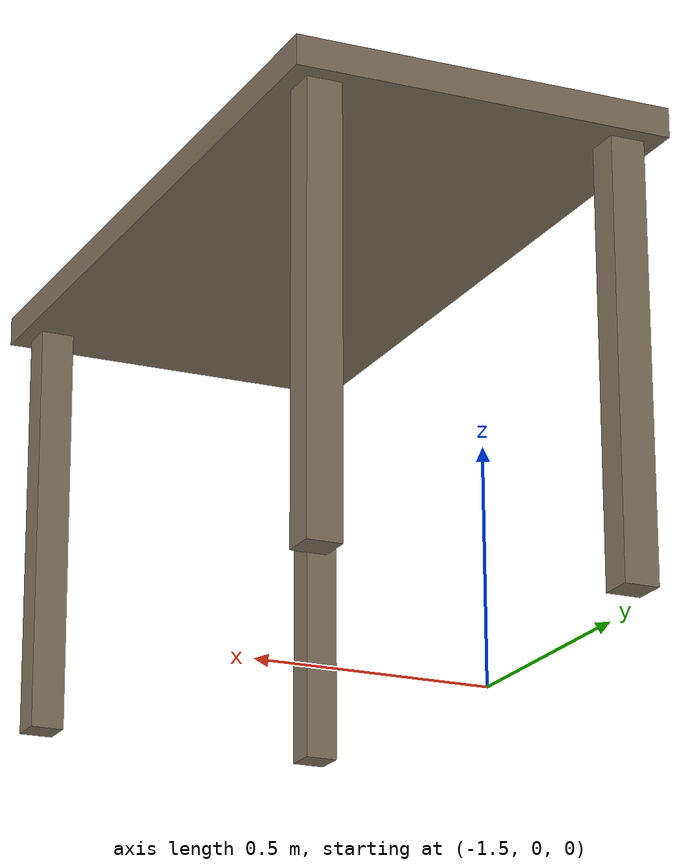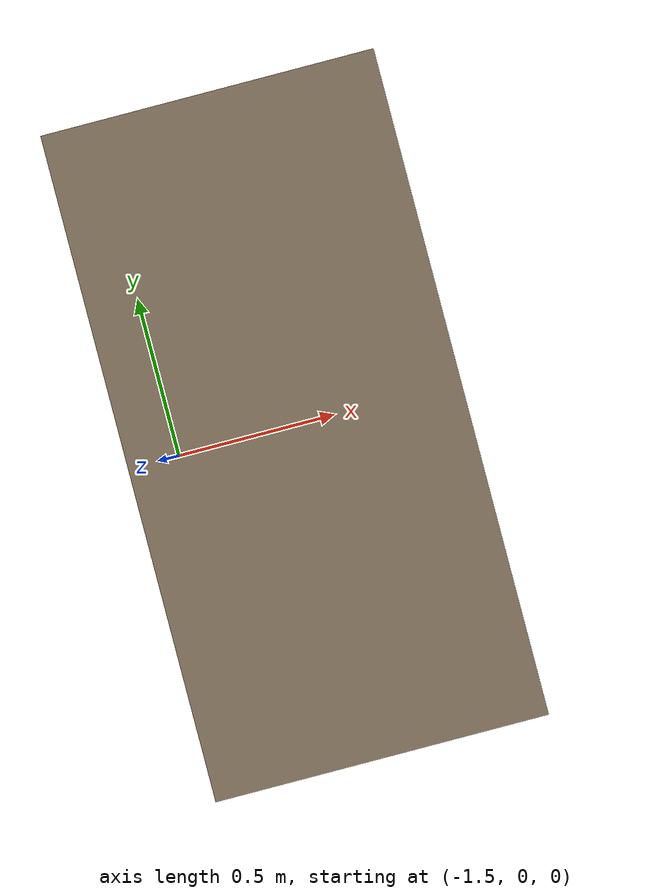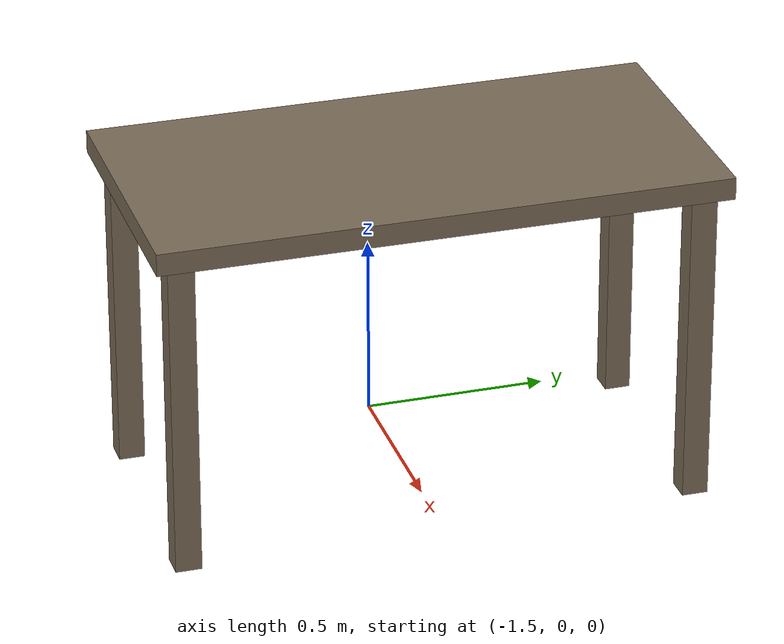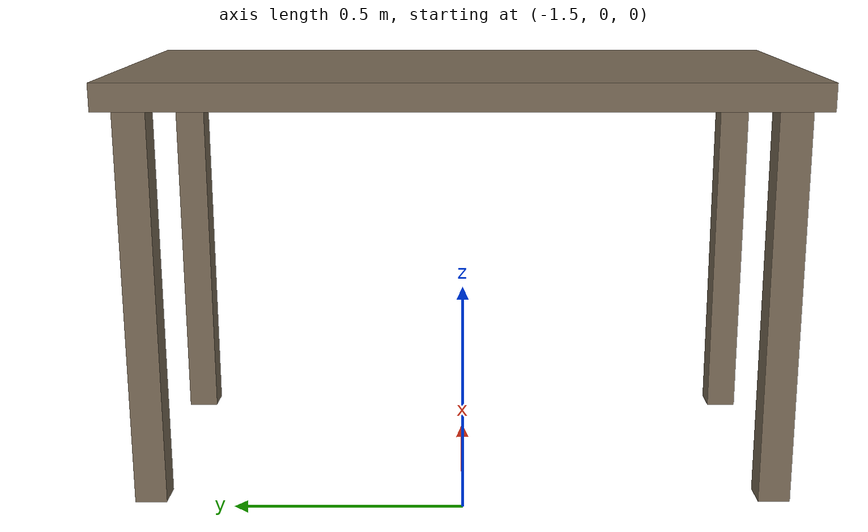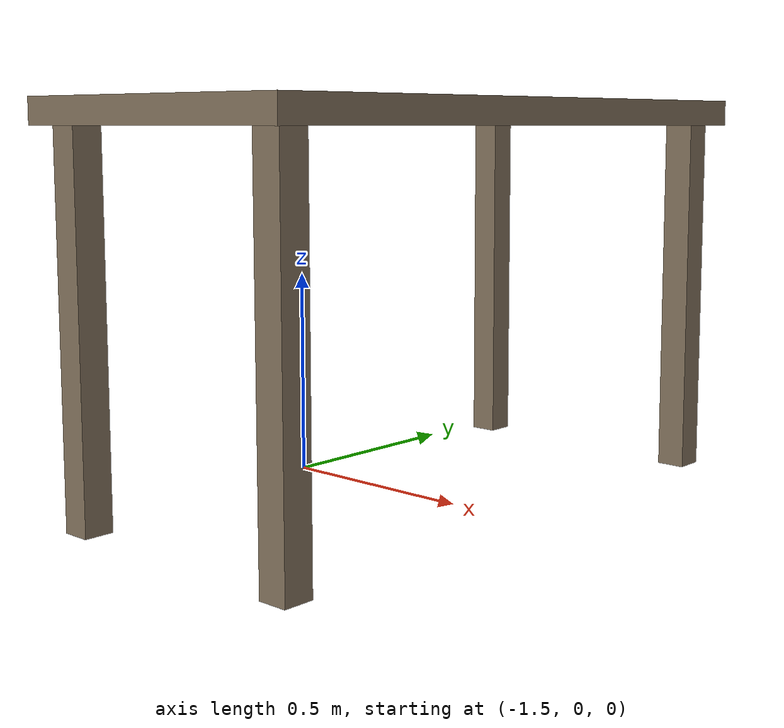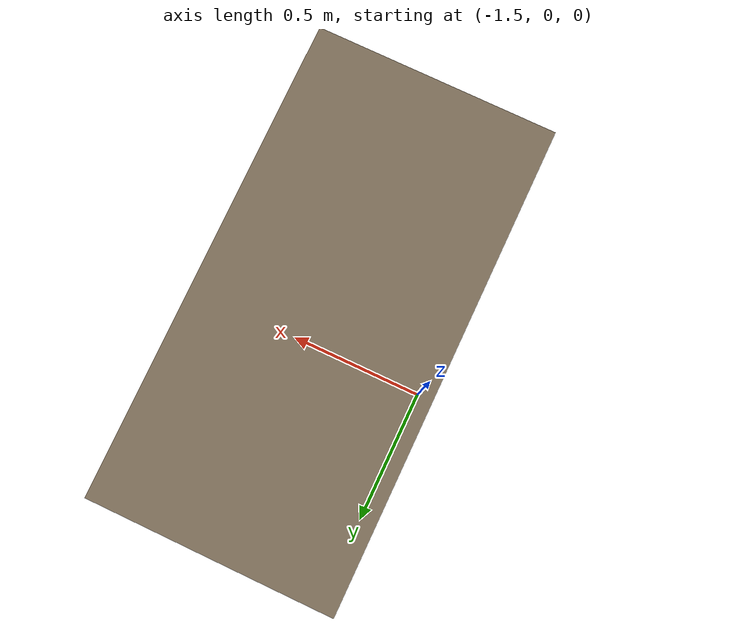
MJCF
<mujoco model="table">
  <asset>
    <material name="table" rgba="0.48 0.42 0.34 1" specular="0.15" shininess="0.25"/>
  </asset>

  <worldbody>
    <body name="table" pos="-1.13 0 0">
        <geom type="box" name="tabletop" size="0.38 0.76 0.03" pos="0 0 0.9" material="table"/>
        <geom type="box" name="front_left_table_leg" size="0.035 0.035 0.435" pos="-0.31 -0.69 0.435" material="table"/>
        <geom type="box" name="front_right_table_leg" size="0.035 0.035 0.435" pos="-0.31 0.69 0.435" material="table"/>
        <geom type="box" name="back_left_table_leg" size="0.035 0.035 0.435" pos="0.31 -0.69 0.435" material="table"/>
        <geom type="box" name="back_right_table_leg" size="0.035 0.035 0.435" pos="0.31 0.69 0.435" material="table"/>
    </body>
  </worldbody>
</mujoco>
